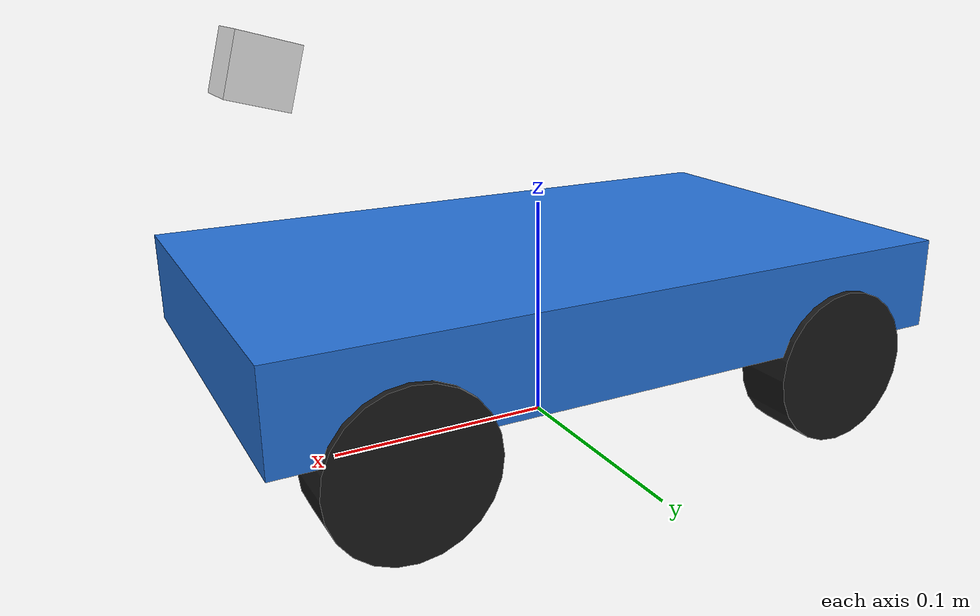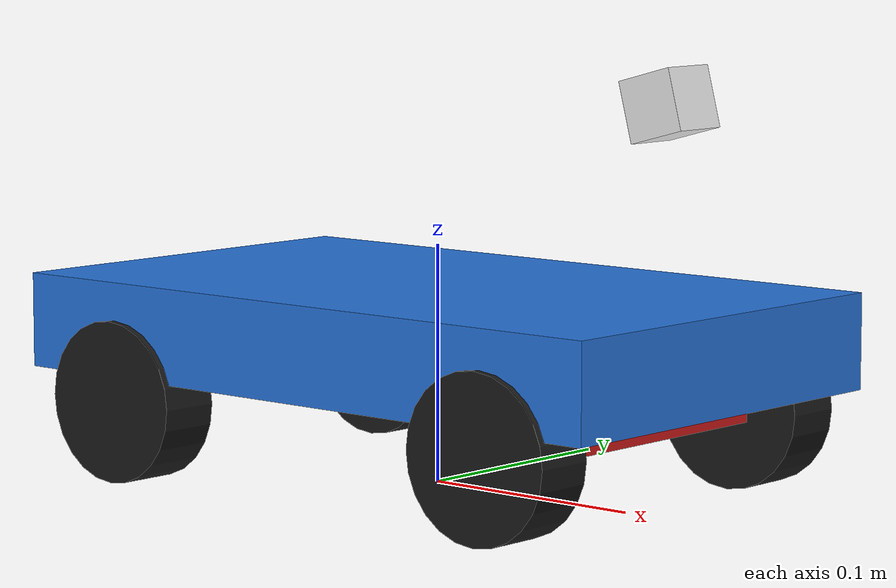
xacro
<?xml version="1.0"?>

<robot name="donkeycar" xmlns:xacro="http://ros.org/wiki/xacro">
<link name="base_footprint"/>

<joint name="base_footprint_joint" type="fixed">
  <parent link="base_footprint"/>
  <child link="base_link"/>
  <origin xyz="0 0 0" rpy="0 0 0"/>
</joint>

  <!--  1. PARÁMETROS GLOBALES (ajusta aquí si cambias el chasis)   -->

  <!-- Chasis -->
  <xacro:property name="base_length"    value="0.30"/>   <!-- m: largo total del chasis -->
  <xacro:property name="base_width"     value="0.18"/>   <!-- m: ancho total del chasis -->
  <xacro:property name="base_height"    value="0.04"/>   <!-- m: altura del cuerpo del chasis -->
  <xacro:property name="base_mass"      value="1.2"/>    <!-- kg: masa total estimada con Raspberry Pi y batería -->

  <!-- Ruedas -->
  <xacro:property name="wheel_radius"   value="0.034"/>  <!-- m: radio de llanta 65mm -->
  <xacro:property name="wheel_width"    value="0.026"/>  <!-- m: ancho de llanta -->
  <xacro:property name="wheel_mass"     value="0.05"/>   <!-- kg -->

  <!-- Distancias entre ejes -->
  <xacro:property name="wheelbase"      value="0.20"/>   <!-- m: distancia eje trasero a eje delantero -->
  <xacro:property name="track_width"    value="0.16"/>   <!-- m: distancia entre centros de ruedas izq/der -->

  <!-- Offsets de posición -->
  <xacro:property name="wheel_zoff"     value="${wheel_radius}"/>  <!-- altura del eje de rueda desde el suelo -->
  <xacro:property name="chassis_zoff"   value="${wheel_radius + 0.01}"/> <!-- fondo del chasis sobre el suelo -->

  <!-- Límites de dirección -->
  <xacro:property name="steer_limit"    value="0.5236"/>  <!-- rad (~30°) — máximo ángulo de giro -->
  <xacro:property name="steer_effort"   value="2.0"/>
  <xacro:property name="steer_vel"      value="3.0"/>     <!-- rad/s -->

  <!-- Límites de tracción -->
  <xacro:property name="drive_effort"   value="5.0"/>
  <xacro:property name="drive_vel"      value="20.0"/>    <!-- rad/s → ~2.4 m/s máx. -->

  <!-- Cámara -->
  <xacro:property name="cam_x"          value="0.12"/>    <!-- m: adelante del centro del chasis -->
  <xacro:property name="cam_z"          value="0.08"/>    <!-- m: altura sobre el chasis -->
  <xacro:property name="cam_tilt"       value="-0.2618"/> <!-- rad (~-15°): inclinación hacia abajo -->

  <!-- Constante auxiliar -->
  <xacro:property name="pi"             value="3.14159265358979"/>

  <!--  2. MACROS DE INERCIA                                        -->

  <!-- Inercia de caja sólida -->
  <xacro:macro name="box_inertia" params="m l w h">
    <inertial>
      <origin xyz="0 0 0" rpy="0 0 0"/>
      <mass value="${m}"/>
      <inertia
        ixx="${m*(w*w+h*h)/12}" ixy="0" ixz="0"
        iyy="${m*(l*l+h*h)/12}" iyz="0"
        izz="${m*(l*l+w*w)/12}"/>
    </inertial>
  </xacro:macro>

  <!-- Inercia de cilindro sólido (ruedas) — eje de rotación: Y -->
  <xacro:macro name="cylinder_inertia" params="m r h">
    <inertial>
      <origin xyz="0 0 0" rpy="${pi/2} 0 0"/>
      <mass value="${m}"/>
      <inertia
        ixx="${m*(3*r*r+h*h)/12}" ixy="0" ixz="0"
        iyy="${m*r*r/2}"          iyz="0"
        izz="${m*(3*r*r+h*h)/12}"/>
    </inertial>
  </xacro:macro>

  <!--  3. MACRO DE RUEDA (reutilizable para las 4 ruedas)          -->
  <!--
    Parámetros:
      prefix    → nombre del link: front_left, front_right, rear_left, rear_right
      x_reflect → +1 = delante, -1 = atrás
      y_reflect → +1 = izquierda, -1 = derecha
  -->
  <xacro:macro name="wheel" params="prefix x_reflect y_reflect">
    <link name="${prefix}_wheel">
      <visual>
        <origin xyz="0 0 0" rpy="${pi/2} 0 0"/>
        <geometry>
          <cylinder radius="${wheel_radius}" length="${wheel_width}"/>
        </geometry>
        <material name="black">
          <color rgba="0.1 0.1 0.1 1.0"/>
        </material>
      </visual>
      <collision>
        <origin xyz="0 0 0" rpy="${pi/2} 0 0"/>
        <geometry>
          <cylinder radius="${wheel_radius}" length="${wheel_width}"/>
        </geometry>
      </collision>
      <xacro:cylinder_inertia m="${wheel_mass}" r="${wheel_radius}" h="${wheel_width}"/>
    </link>

    <!-- Gazebo: fricción de llanta sobre piso -->
    <gazebo reference="${prefix}_wheel">
      <material>Gazebo/DarkGray</material>
      <mu1>1.0</mu1>
      <mu2>1.0</mu2>
      <kp>1000000.0</kp>
      <kd>100.0</kd>
      <minDepth>0.001</minDepth>
      <maxVel>1.0</maxVel>
    </gazebo>

    <joint name="${prefix}_wheel_joint" type="continuous">
      <parent link="base_link"/>
      <child  link="${prefix}_wheel"/>
      <origin
        xyz="${x_reflect * wheelbase/2} ${y_reflect * track_width/2} ${wheel_zoff}"
        rpy="0 0 0"/>
      <axis xyz="0 1 0"/>
      <dynamics damping="0.1" friction="0.0"/>
      <limit effort="${drive_effort}" velocity="${drive_vel}"/>
    </joint>
  </xacro:macro>

  <!--  4. BASE LINK (chasis principal)                             -->
  <link name="base_link">
    <visual>
      <origin xyz="0 0 ${chassis_zoff + base_height/2}" rpy="0 0 0"/>
      <geometry>
        <box size="${base_length} ${base_width} ${base_height}"/>
      </geometry>
      <material name="blue">
        <color rgba="0.15 0.45 0.85 1.0"/>
      </material>
    </visual>
    <collision>
      <origin xyz="0 0 ${chassis_zoff + base_height/2}" rpy="0 0 0"/>
      <geometry>
        <box size="${base_length} ${base_width} ${base_height}"/>
      </geometry>
    </collision>
    <xacro:box_inertia m="${base_mass}" l="${base_length}" w="${base_width}" h="${base_height}"/>
  </link>

  <gazebo reference="base_link">
    <material>Gazebo/Blue</material>
  </gazebo>

  <!--  5. RUEDAS TRASERAS (tracción: reciben cmd de velocidad)     -->
  <xacro:wheel prefix="rear_left"  x_reflect="-1" y_reflect="1"/>
  <xacro:wheel prefix="rear_right" x_reflect="-1" y_reflect="-1"/>

  <!--  6. DIRECCIÓN (steering_link + ruedas delanteras)           -->

  <!-- Link de dirección (invisible, punto de pivote) -->
  <link name="steering_link">
    <visual>
      <geometry>
        <box size="0.02 ${track_width} 0.01"/>
      </geometry>
      <material name="red">
        <color rgba="0.8 0.1 0.1 1.0"/>
      </material>
    </visual>
    <collision>
      <geometry>
        <box size="0.02 ${track_width} 0.01"/>
      </geometry>
    </collision>
    <inertial>
      <mass value="0.05"/>
      <inertia ixx="0.001" ixy="0" ixz="0" iyy="0.001" iyz="0" izz="0.001"/>
    </inertial>
  </link>

  <!-- Joint de dirección: revolute sobre eje Z (giro izquierda/derecha) -->
  <joint name="steering_joint" type="revolute">
    <parent link="base_link"/>
    <child  link="steering_link"/>
    <origin xyz="${wheelbase/2} 0 ${wheel_zoff}" rpy="0 0 0"/>
    <axis xyz="0 0 1"/>
    <limit
      lower="${-steer_limit}"
      upper="${steer_limit}"
      effort="${steer_effort}"
      velocity="${steer_vel}"/>
    <dynamics damping="0.5" friction="0.0"/>
  </joint>

  <!-- Rueda delantera izquierda -->
  <link name="front_left_wheel">
    <visual>
      <origin xyz="0 0 0" rpy="${pi/2} 0 0"/>
      <geometry>
        <cylinder radius="${wheel_radius}" length="${wheel_width}"/>
      </geometry>
      <material name="black"/>
    </visual>
    <collision>
      <origin xyz="0 0 0" rpy="${pi/2} 0 0"/>
      <geometry>
        <cylinder radius="${wheel_radius}" length="${wheel_width}"/>
      </geometry>
    </collision>
    <xacro:cylinder_inertia m="${wheel_mass}" r="${wheel_radius}" h="${wheel_width}"/>
  </link>

  <gazebo reference="front_left_wheel">
    <material>Gazebo/DarkGray</material>
    <mu1>1.0</mu1><mu2>1.0</mu2>
  </gazebo>

  <joint name="front_left_wheel_joint" type="continuous">
    <parent link="steering_link"/>
    <child  link="front_left_wheel"/>
    <origin xyz="0 ${track_width/2} 0" rpy="0 0 0"/>
    <axis xyz="0 1 0"/>
    <dynamics damping="0.1" friction="0.0"/>
    <limit effort="${drive_effort}" velocity="${drive_vel}"/>
  </joint>

  <!-- Rueda delantera derecha -->
  <link name="front_right_wheel">
    <visual>
      <origin xyz="0 0 0" rpy="${pi/2} 0 0"/>
      <geometry>
        <cylinder radius="${wheel_radius}" length="${wheel_width}"/>
      </geometry>
      <material name="black"/>
    </visual>
    <collision>
      <origin xyz="0 0 0" rpy="${pi/2} 0 0"/>
      <geometry>
        <cylinder radius="${wheel_radius}" length="${wheel_width}"/>
      </geometry>
    </collision>
    <xacro:cylinder_inertia m="${wheel_mass}" r="${wheel_radius}" h="${wheel_width}"/>
  </link>

  <gazebo reference="front_right_wheel">
    <material>Gazebo/DarkGray</material>
    <mu1>1.0</mu1><mu2>1.0</mu2>
  </gazebo>

  <joint name="front_right_wheel_joint" type="continuous">
    <parent link="steering_link"/>
    <child  link="front_right_wheel"/>
    <origin xyz="0 ${-track_width/2} 0" rpy="0 0 0"/>
    <axis xyz="0 1 0"/>
    <dynamics damping="0.1" friction="0.0"/>
    <limit effort="${drive_effort}" velocity="${drive_vel}"/>
  </joint>

  <!--  7. CÁMARA                                                   -->

  <link name="camera_link">
    <visual>
      <origin xyz="0 0 0" rpy="0 0 0"/>
      <geometry>
        <box size="0.025 0.025 0.025"/>
      </geometry>
      <material name="white">
        <color rgba="0.9 0.9 0.9 1.0"/>
      </material>
    </visual>
    <collision>
      <geometry>
        <box size="0.025 0.025 0.025"/>
      </geometry>
    </collision>
    <inertial>
      <mass value="0.02"/>
      <inertia ixx="0.0001" ixy="0" ixz="0" iyy="0.0001" iyz="0" izz="0.0001"/>
    </inertial>
  </link>

  <joint name="camera_joint" type="fixed">
    <parent link="base_link"/>
    <child  link="camera_link"/>
    <origin
      xyz="${cam_x} 0 ${chassis_zoff + base_height + cam_z}"
      rpy="0 ${cam_tilt} 0"/>
  </joint>

  <!-- Link óptico de la cámara (frame estándar ROS: x=adelante, z=arriba) -->
  <link name="camera_optical_link"/>
  <joint name="camera_optical_joint" type="fixed">
    <parent link="camera_link"/>
    <child  link="camera_optical_link"/>
    <origin xyz="0 0 0" rpy="${-pi/2} 0 ${-pi/2}"/>
  </joint>

  <!-- Plugin de cámara Gazebo -->
  <gazebo reference="camera_link">
    <material>Gazebo/White</material>
    <sensor type="camera" name="donkeycar_camera">
      <update_rate>30.0</update_rate>
      <camera name="main_camera">
        <horizontal_fov>1.8326</horizontal_fov>  <!-- ~105° FOV gran angular -->
        <image>
          <width>320</width>
          <height>240</height>
          <format>R8G8B8</format>
        </image>
        <clip>
          <near>0.02</near>
          <far>30</far>
        </clip>
        <noise>
          <type>gaussian</type>
          <mean>0.0</mean>
          <stddev>0.005</stddev>
        </noise>
      </camera>
      <plugin name="camera_controller" filename="libgazebo_ros_camera.so">
        <ros>
          <namespace>/donkeycar</namespace>
          <remapping>image_raw:=camera/image_raw</remapping>
          <remapping>camera_info:=camera/camera_info</remapping>
        </ros>
        <camera_name>main_camera</camera_name>
        <frame_name>camera_optical_link</frame_name>
      </plugin>
    </sensor>
  </gazebo>

  <!--  8. PLUGIN DE CONTROL ACKERMANN (drive + steering)          -->
  <gazebo>
    <plugin name="gazebo_ros_ackermann_drive" filename="libgazebo_ros_ackermann_drive.so">
      <ros>
        <namespace>/donkeycar</namespace>
        <remapping>cmd_ackermann:=cmd_ackermann</remapping>
        <remapping>odom:=odom</remapping>
        <remapping>distance:=distance</remapping>
      </ros>

      <!-- Joints de tracción (ruedas traseras) -->
      <left_joint>rear_left_wheel_joint</left_joint>
      <right_joint>rear_right_wheel_joint</right_joint>

      <!-- Joint de dirección -->
      <steering_joint>steering_joint</steering_joint>

      <!-- Geometría del vehículo -->
      <wheel_separation>${track_width}</wheel_separation>
      <wheel_diameter>${2*wheel_radius}</wheel_diameter>
      <wheelbase>${wheelbase}</wheelbase>

      <!-- Límites dinámicos -->
      <max_steer>${steer_limit}</max_steer>
      <max_speed>3.0</max_speed>
      <max_wheel_torque>${drive_effort}</max_wheel_torque>
      <max_wheel_acceleration>2.0</max_wheel_acceleration>

      <!-- Odometría -->
      <publish_odom>true</publish_odom>
      <publish_odom_tf>true</publish_odom_tf>
      <odometry_frame>odom</odometry_frame>
      <robot_base_frame>base_link</robot_base_frame>
    </plugin>
  </gazebo>

  <!--  9. PUBLICADOR DE ESTADOS DE JOINTS                         -->
  <gazebo>
    <plugin name="gazebo_ros_joint_state_publisher"
            filename="libgazebo_ros_joint_state_publisher.so">
      <ros>
        <namespace>/donkeycar</namespace>
        <remapping>joint_states:=joint_states</remapping>
      </ros>
      <update_rate>50</update_rate>
      <joint_name>steering_joint</joint_name>
      <joint_name>front_left_wheel_joint</joint_name>
      <joint_name>front_right_wheel_joint</joint_name>
      <joint_name>rear_left_wheel_joint</joint_name>
      <joint_name>rear_right_wheel_joint</joint_name>
    </plugin>
  </gazebo>

</robot>
